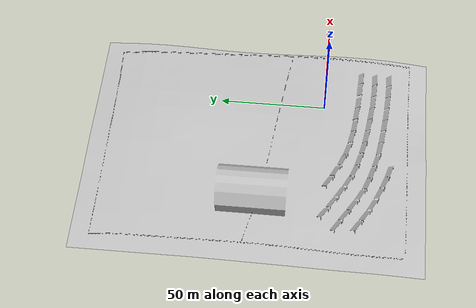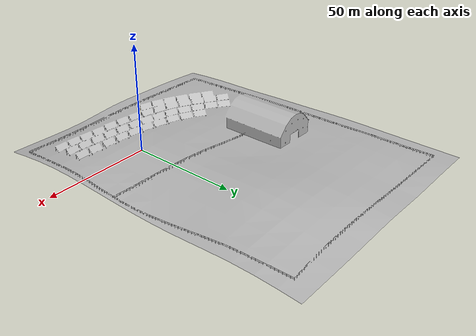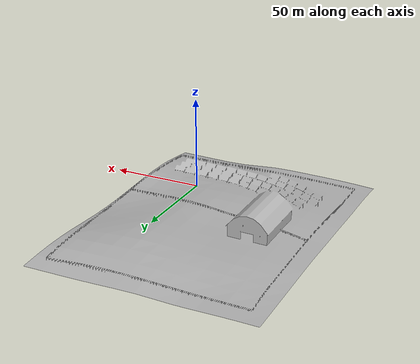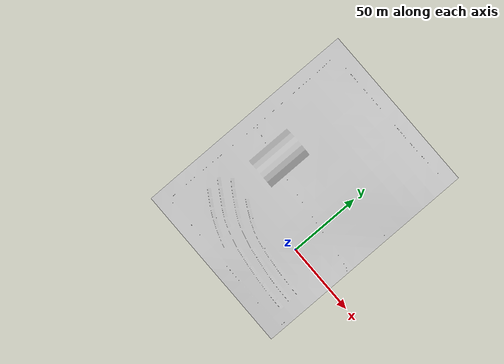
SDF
<sdf version="1.6">
 <world name="default">
  <plugin name="ros_interface_plugin" filename="librotors_gazebo_ros_interface_plugin.so"/>
  <light name="sun" type="directional">
   <pose>0 0 10 0 -0 0</pose>
   <diffuse>1 1 1 1</diffuse>
   <specular>0.2 0.2 0.2 1</specular>
   <attenuation>
    <range>1000</range>
    <constant>0.9</constant>
    <linear>0.01</linear>
    <quadratic>0.001</quadratic>
   </attenuation>
   <direction>-0.5 -0.5 -1</direction>
  </light>
  <physics type="ode">
   <ode>
    <solver><type>quick</type><iters>1000</iters><sor>1.3</sor></solver>
    <constraints>
     <cfm>0</cfm>
     <erp>0.2</erp>
     <contact_max_correcting_vel>100</contact_max_correcting_vel>
     <contact_surface_layer>0.001</contact_surface_layer>
    </constraints>
   </ode>
   <max_step_size>0.01</max_step_size>
   <real_time_factor>1</real_time_factor>
   <real_time_update_rate>100</real_time_update_rate>
   <gravity>0 0 -9.8</gravity>
  </physics>
  <scene><ambient>1 1 1 1</ambient><background>1 1 1 1</background><shadows>1</shadows></scene>
  <spherical_coordinates>
   <surface_model>EARTH_WGS84</surface_model>
   <latitude_deg>0</latitude_deg>
   <longitude_deg>0</longitude_deg>
   <elevation>0</elevation>
   <heading_deg>0</heading_deg>
  </spherical_coordinates>
  <gravity>0 0 -9.8</gravity>
  <magnetic_field>6e-06 2.3e-05 -4.2e-05</magnetic_field>
  <atmosphere type="adiabatic"/>
  <audio><device>default</device></audio>
  <model name="agriculture_geom">
   <link name="agriculture_world_link">
    <pose>-25 5 0 0 -0 0</pose>
    <inertial>
     <pose>-25 5 0 0 -0 0</pose>
     <mass>1</mass>
     <inertia><ixx>1</ixx><ixy>0</ixy><ixz>0</ixz><iyy>1</iyy><iyz>0</iyz><izz>1</izz></inertia>
    </inertial>
    <collision name="agriculture_world_link_collision">
     <pose>-25 5 0 0 -0 0</pose>
     <geometry>
      <mesh><scale>1 1 1</scale><uri>model://cpr_agriculture/meshes/agriculture_world.dae</uri></mesh>
     </geometry>
    </collision>
    <visual name="agriculture_world_link_visual">
     <pose>-25 5 0 0 -0 0</pose>
     <geometry>
      <mesh><scale>1 1 1</scale><uri>model://cpr_agriculture/meshes/agriculture_world.dae</uri></mesh>
     </geometry>
    </visual>
   </link>
   <static>1</static>
  </model>
 </world>
</sdf>
